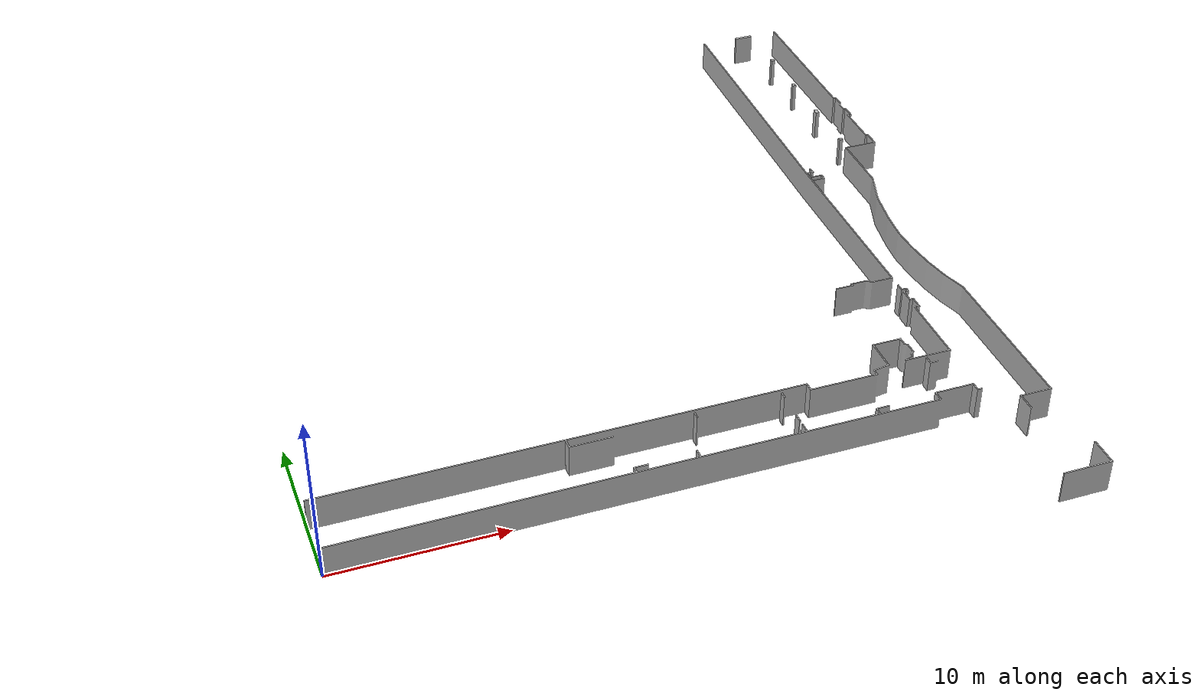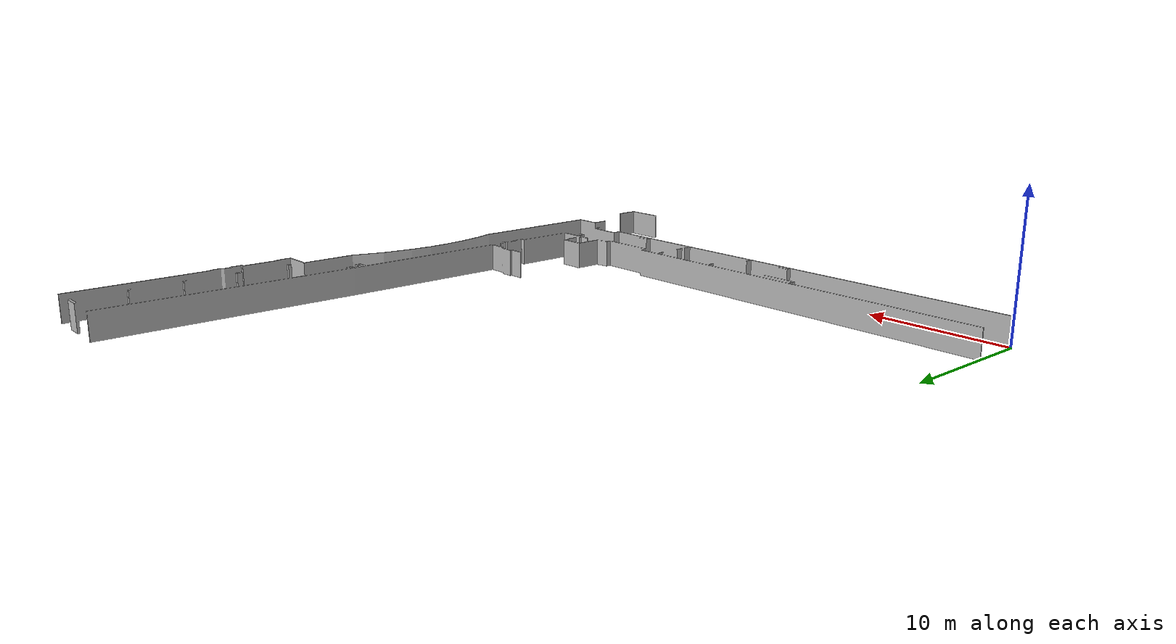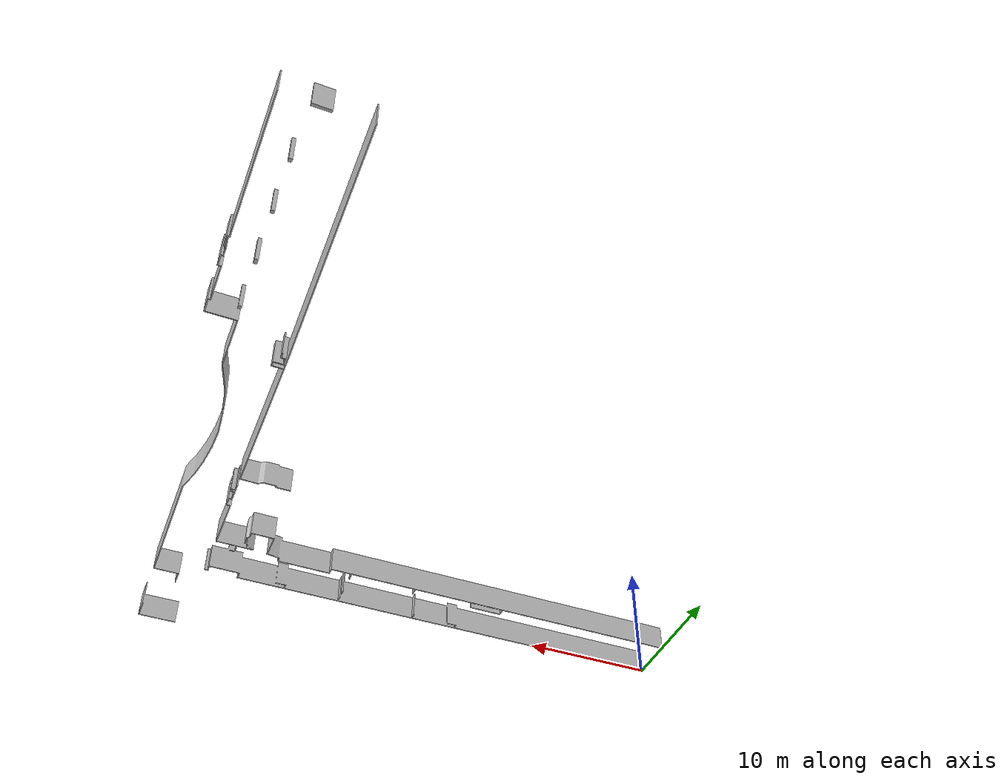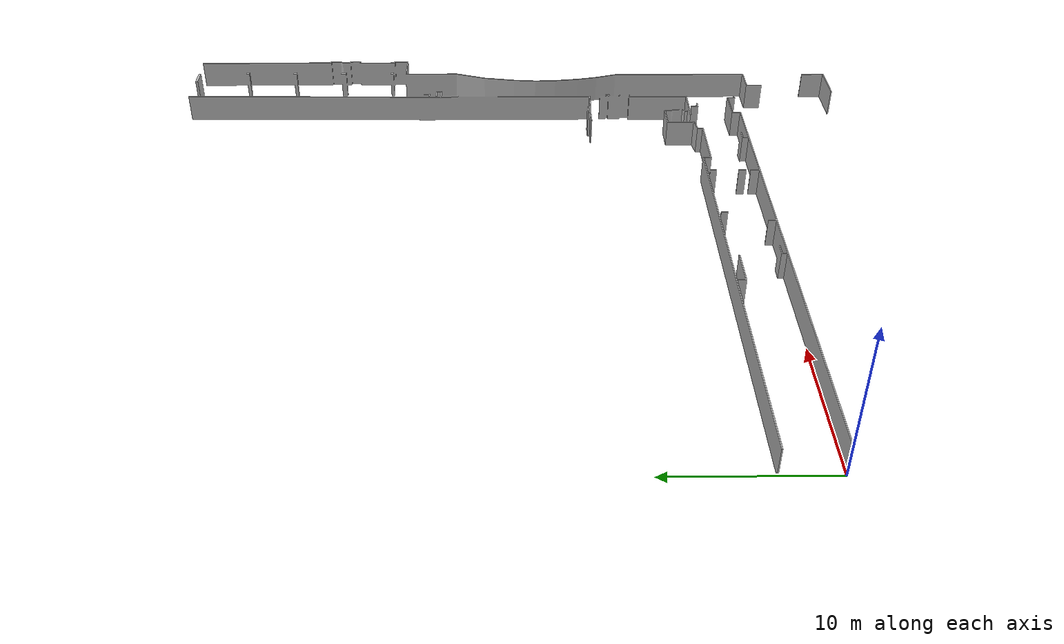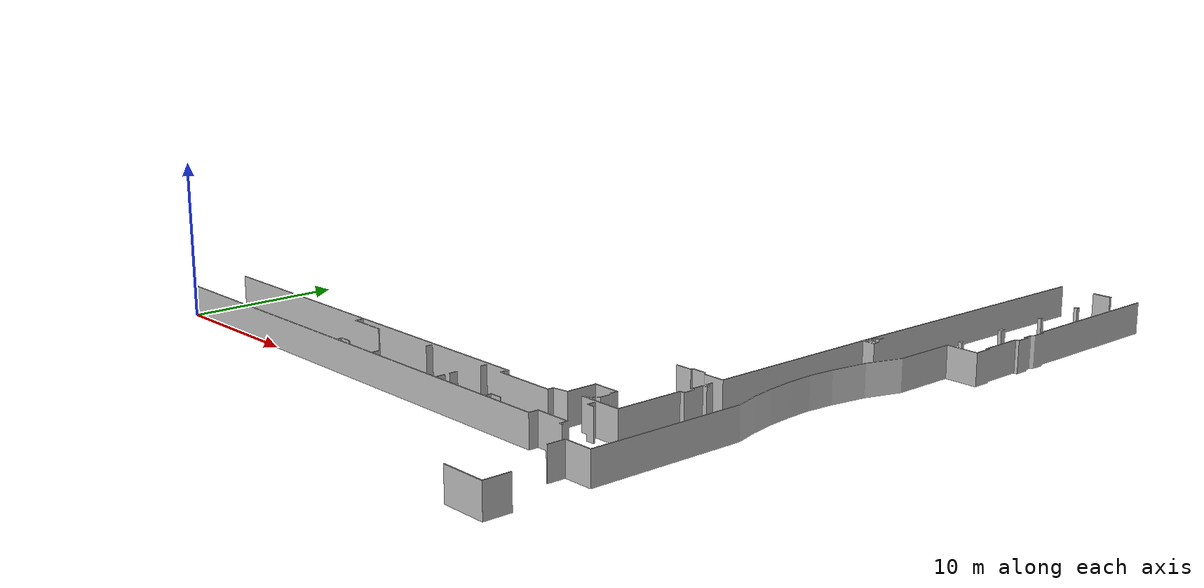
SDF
<?xml version="1.0" ?>
<sdf version="1.4">
  <model name="fme_corridor">
    <static>true</static>
    <link name="link">
      <pose>0 0 0 0 0 0</pose>
      <collision name="collision">
        <geometry>
          <mesh>
            <uri>model://fme_corridor/meshes/fme_corridor.stl</uri>
            <scale>1 1 1</scale>
          </mesh>
        </geometry>
      </collision>
      <visual name="visual">
        <geometry>
          <mesh>
            <uri>model://fme_corridor/meshes/fme_corridor.stl</uri>
            <scale>1 1 1</scale>
          </mesh>
        </geometry>
      </visual>
    </link>
  </model>
</sdf>
